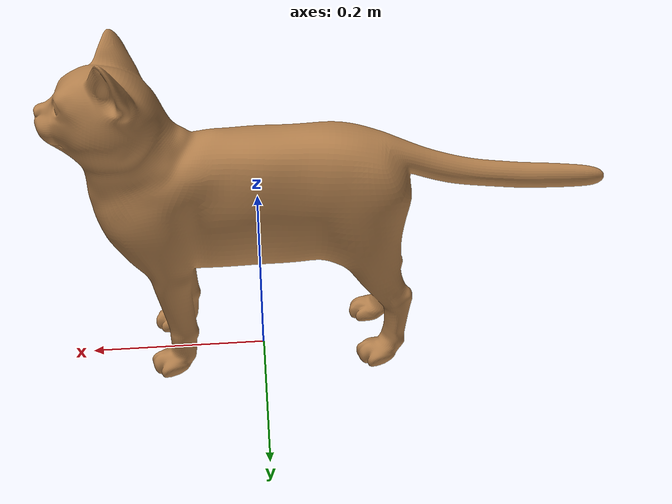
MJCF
<mujoco>
    <asset>
        <mesh file="meshes/cat.stl" name="cat_mesh" scale="0.01 0.01 0.01"/>
        <texture file="../textures/wood0.png" name="tex-cat"/>
        <material name="cat" reflectance="0.7" texrepeat="5 5" texture="tex-cat" texuniform="true"/>
    </asset>
    <worldbody>
        <body name="visual">
            <geom pos="0 0 0.0" quat="0.7071068 0 0 0.7071068" mesh="cat_mesh" type="mesh" solimp="0.998 0.998 0.001" solref="0.001 1" density="100" friction="0.95 0.3 0.1" material="cat" group="0" condim="4"/>
        </body>
    </worldbody>
</mujoco>
